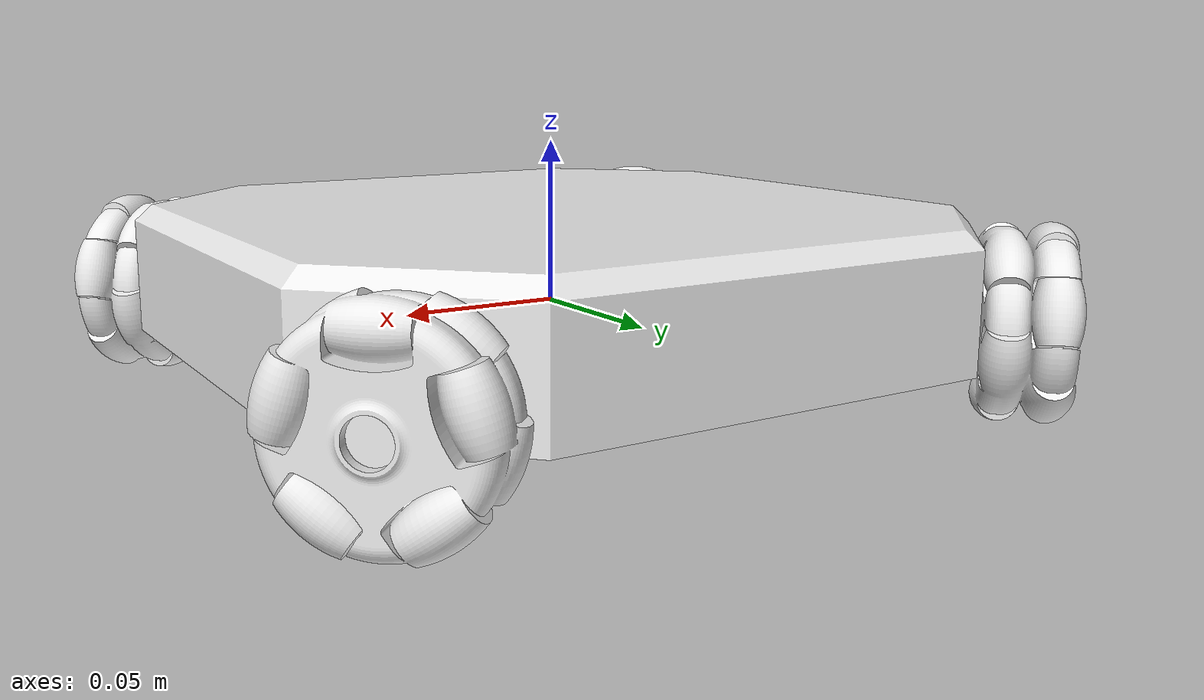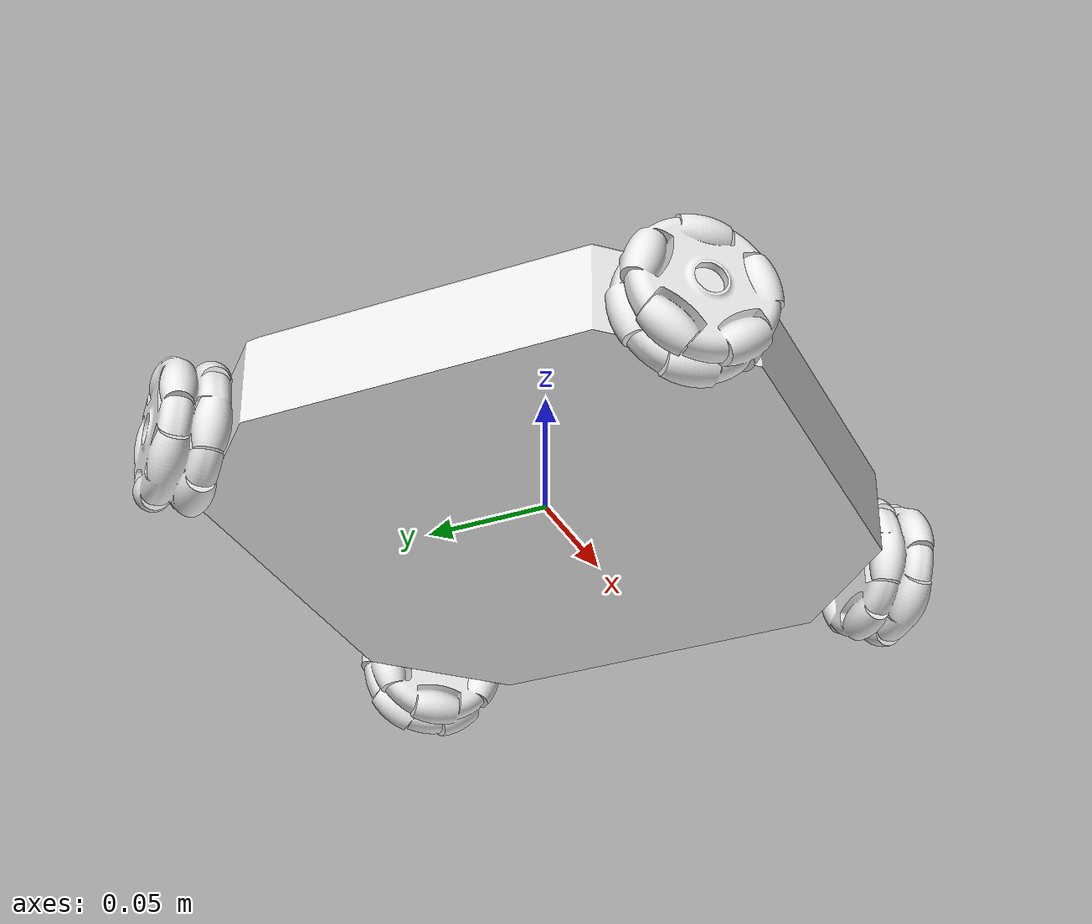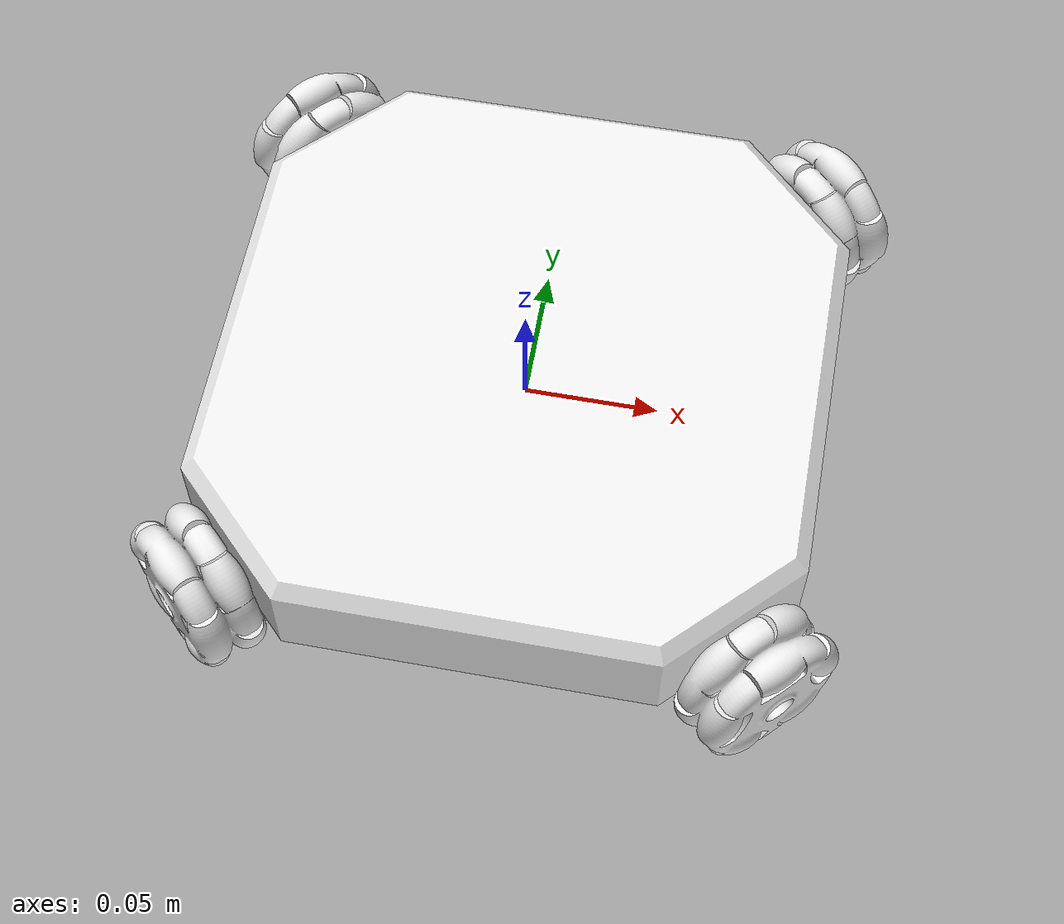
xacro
<?xml version="1.0" ?>

<robot name="robot" xmlns:xacro="http://www.ros.org/wiki/xacro">

    <link name="chassis">
        <visual>
            <geometry>
                <mesh filename="package://project_apr_pkg/meshes/chassis.STL" scale="0.001 0.001 0.001"/>
            </geometry>
        </visual>

        <inertial>
            <mass value="0.2"/>
            <inertia  ixx="0.0007483" ixy="0" ixz="0" iyy="0.0007483" iyz="0" izz="0.0013333" />
        </inertial>
    </link>

    <gazebo reference="chassis">
        <material>Gazebo/White</material>
    </gazebo>

    <xacro:include filename="$(find project_apr_pkg)/model/omni_58mm.xacro"/>

    <xacro:omni_wheel_58mm name="wheel1" parent_link="chassis"
                            xyz=" 0.1  0.1 0" driving_angle="-0.785"
                            effort_limit="10" speed_limit="50" reduction="1"/>

    <xacro:omni_wheel_58mm name="wheel2" parent_link="chassis"
                            xyz="-0.1  0.1 0" driving_angle="0.785"
                            effort_limit="10" speed_limit="50" reduction="1"/>

    <xacro:omni_wheel_58mm name="wheel3" parent_link="chassis"
                            xyz="-0.1 -0.1 0" driving_angle=" 2.356"
                            effort_limit="10" speed_limit="50" reduction="1"/>

    <xacro:omni_wheel_58mm name="wheel4" parent_link="chassis"
                            xyz=" 0.1 -0.1 0" driving_angle=" 3.926"
                            effort_limit="10" speed_limit="50" reduction="1"/>

    <gazebo>
      <plugin name="gazebo_ros_control" filename="libgazebo_ros_control.so">
        <robotNamespace>/robot</robotNamespace>
      </plugin>
    </gazebo>

</robot>

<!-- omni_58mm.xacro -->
<robot xmlns:xacro="http://www.ros.org/wiki/xacro">

<xacro:include filename="$(find project_apr_pkg)/model/hardware_interface.xacro"/>

<xacro:macro name="omni_wheel_58mm" params="name parent_link xyz driving_angle effort_limit speed_limit reduction">

    <!-- mass: kg
         radius: m
         width: m -->

    <!-- friction - The physical static friction. For prismatic joints, the units are Newtons.
            For revolving joints, the units are Newton meters.  -->

    <!-- damping - The physical damping value. For prismatic joints, the units are Newton seconds per meter.
            For revolving joints, Newton meter seconds per radian.  -->

    <xacro:property name="mass" value="0.06"/>
    <xacro:property name="radius" value="0.029"/>
    <xacro:property name="width" value="0.025"/>
    <xacro:property name="damping" value="1"/>
    <xacro:property name="friction" value="1"/>

    <!-- create the wheel link first -->
    <link name="${name}">

        <inertial>
            <mass value="${mass}"/>
            <inertia  ixx="1.574e-05" ixy="0" ixz="0" iyy="1.574e-05" iyz="0" izz="2.523e-05" />
        </inertial>
        <visual>
            <geometry>
                <mesh filename="package://project_apr_pkg/meshes/omni_58mm.STL" scale="0.001 0.001 0.001"/>
            </geometry>
        </visual>
        <collision>
            <geometry>
                <cylinder radius="${radius}" length="${width}"/>
            </geometry>
        </collision>

    </link>

    <gazebo reference="${name}">
        <material>Gazebo/White</material>

        <!-- friction coeff along the friction axis -->
        <mu1>0.0</mu1>

        <!-- friciton coeff along the axes perpendicular to the friction axis -->
        <mu2>1.0</mu2>

        <!-- direction for friction axis -->
        <fdir1>0 0 1</fdir1>
    </gazebo>

    <joint name="${name}_joint" type="continuous">

        <parent link="${parent_link}"/>
        <child link="${name}"/>
        <origin xyz="${xyz}" rpy="-1.57 0 ${driving_angle}"/>
        <axis xyz="0 0 1" rpy="0 0 0"/>
        <limit effort="${effort_limit}" velocity="${speed_limit}"/>
        <joint_properties damping="${damping}" friction="${friction}" />

    </joint>

    <xacro:joint_transmission joint_name="${name}_joint" reduction="${reduction}"/>

</xacro:macro>

</robot>
